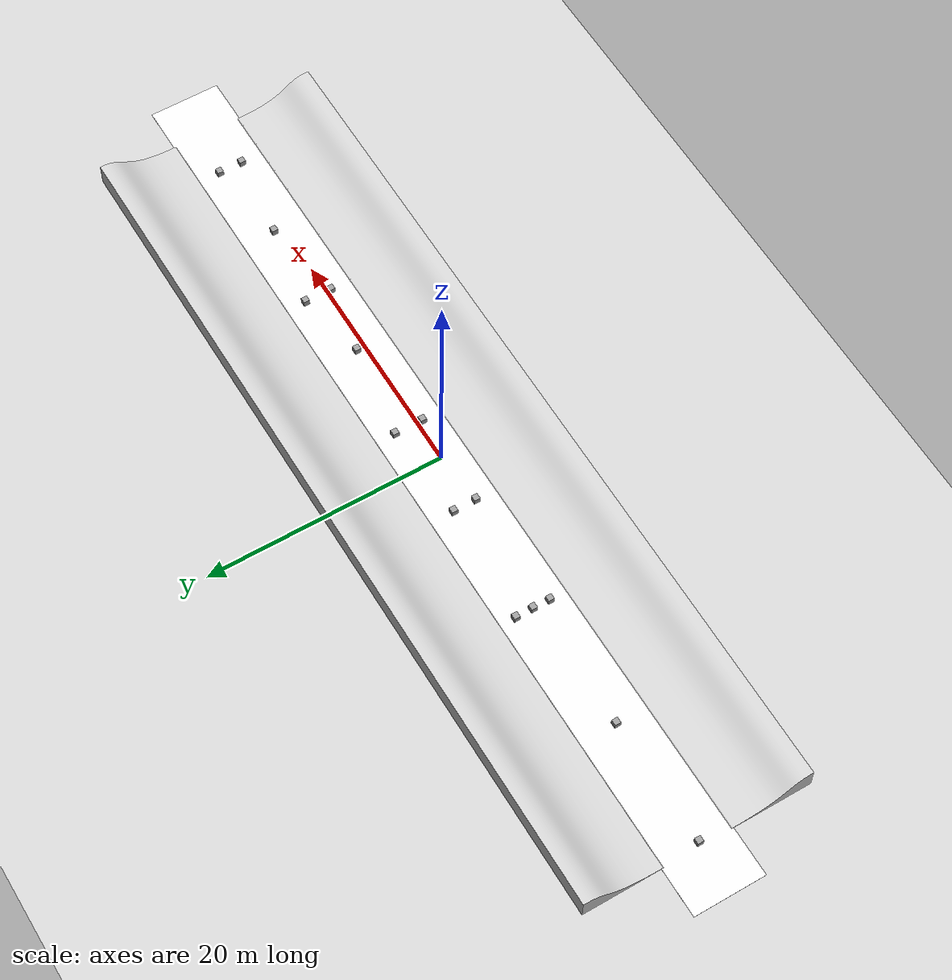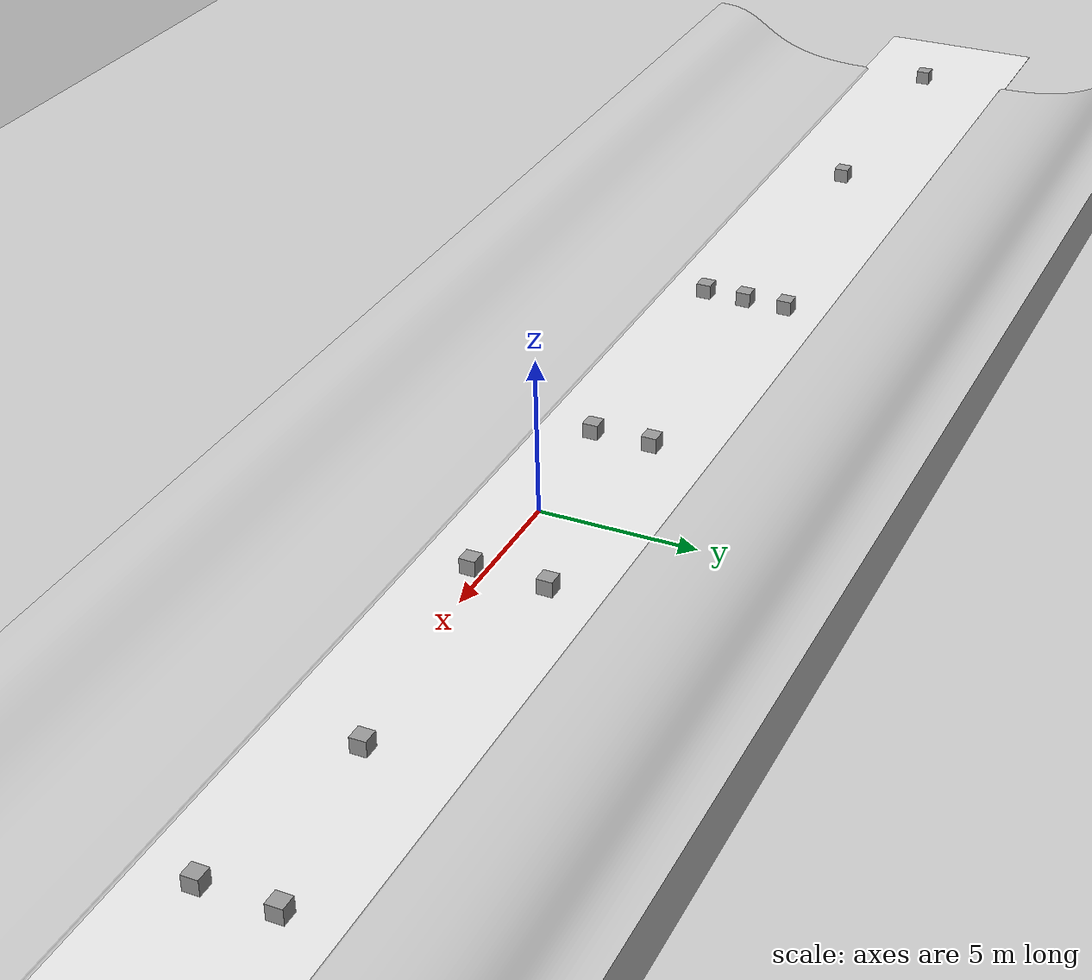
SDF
<sdf version="1.6">
 <world name="default">
  <light name="sun" type="directional">
   <pose>0 0 10 0 -0 0</pose>
   <diffuse>0.8 0.8 0.8 1</diffuse>
   <specular>0.2 0.2 0.2 1</specular>
   <attenuation>
    <range>1000</range>
    <constant>0.9</constant>
    <linear>0.01</linear>
    <quadratic>0.001</quadratic>
   </attenuation>
   <direction>-0.5 0.1 -0.9</direction>
  </light>
  <model name="ground_plane">
   <static>1</static>
   <link name="link">
    <collision name="collision">
     <geometry><plane><normal>0 0 1</normal><size>100 100</size></plane></geometry>
     <surface>
      <contact><collide_bitmask>65535</collide_bitmask></contact>
      <friction><ode><mu>100</mu><mu2>50</mu2></ode></friction>
     </surface>
    </collision>
    <visual name="visual">
     <cast_shadows>0</cast_shadows>
     <geometry><plane><normal>0 0 1</normal><size>100 100</size></plane></geometry>
     <material>
      <script><uri>file://media/materials/scripts/gazebo.material</uri><name>Gazebo/Grey</name></script>
     </material>
    </visual>
   </link>
  </model>
  <gravity>0 0 -9.8</gravity>
  <magnetic_field>6e-06 2.3e-05 -4.2e-05</magnetic_field>
  <atmosphere type="adiabatic"/>
  <physics name="default_physics" default="0" type="ode">
   <max_step_size>0.001</max_step_size>
   <real_time_factor>1</real_time_factor>
   <real_time_update_rate>1000</real_time_update_rate>
  </physics>
  <scene><ambient>0.4 0.4 0.4 1</ambient><background>0.7 0.7 0.7 1</background><shadows>1</shadows></scene>
  <spherical_coordinates>
   <surface_model>EARTH_WGS84</surface_model>
   <latitude_deg>0</latitude_deg>
   <longitude_deg>0</longitude_deg>
   <elevation>0</elevation>
   <heading_deg>0</heading_deg>
  </spherical_coordinates>
  <model name="road_dashed_two_white">
   <static>1</static>
   <link name="link">
    <collision name="collision"><geometry><box><size>80 6 0.02</size></box></geometry></collision>
    <visual name="visual">
     <cast_shadows>0</cast_shadows>
     <geometry><box><size>80 6 0.02</size></box></geometry>
     <material>
      <script>
       <uri>model://road_dashed_two_white/materials/scripts</uri>
       <uri>model://road_dashed_two_white/materials/textures</uri>
       <name>DashedTwoWhite</name>
      </script>
     </material>
    </visual>
   </link>
   <pose>-0.03004 0.750855 0 0 -0 0</pose>
  </model>
  <model name="side_slope">
   <static>1</static>
   <link name="slope_1">
    <collision name="collision">
     <geometry><mesh><uri>model://side_slope/meshes/side_slope.dae</uri><scale>36 1.5 1.5</scale></mesh></geometry>
    </collision>
    <visual name="visual">
     <geometry><mesh><uri>model://side_slope/meshes/side_slope.dae</uri><scale>36 1.5 1.5</scale></mesh></geometry>
     <material>
      <ambient>0.7 0.7 0.7 1</ambient>
      <diffuse>0.8 0.8 0.8 1</diffuse>
      <specular>0.1 0.1 0.1 1</specular>
      <emissive>0 0 0 0</emissive>
     </material>
    </visual>
   </link>
   <link name="slope_2">
    <pose>0 12.3 0 0 -0 -3.14159</pose>
    <collision name="collision">
     <geometry><mesh><uri>model://side_slope/meshes/side_slope.dae</uri><scale>36 1.5 1.5</scale></mesh></geometry>
    </collision>
    <visual name="visual">
     <geometry><mesh><uri>model://side_slope/meshes/side_slope.dae</uri><scale>36 1.5 1.5</scale></mesh></geometry>
     <material>
      <ambient>0.7 0.7 0.7 1</ambient>
      <diffuse>0.8 0.8 0.8 1</diffuse>
      <specular>0.1 0.1 0.1 1</specular>
      <emissive>0 0 0 0</emissive>
     </material>
    </visual>
   </link>
   <pose>0.009305 -5.40299 0 0 -0 0</pose>
  </model>
  <model name="unit_box">
   <pose>31.8605 -0.218029 0.26 0 -0 0</pose>
   <link name="link">
    <inertial>
     <mass>1</mass>
     <inertia>
      <ixx>0.166667</ixx>
      <ixy>0</ixy>
      <ixz>0</ixz>
      <iyy>0.166667</iyy>
      <iyz>0</iyz>
      <izz>0.166667</izz>
     </inertia>
    </inertial>
    <collision name="collision"><geometry><box><size>0.5 0.5 0.5</size></box></geometry></collision>
    <visual name="visual">
     <geometry><box><size>0.5 0.5 0.5</size></box></geometry>
     <material>
      <script><name>Gazebo/Grey</name><uri>file://media/materials/scripts/gazebo.material</uri></script>
     </material>
    </visual>
   </link>
  </model>
  <model name="unit_box_clone">
   <pose>17.4196 -0.316624 0.26 0 -0 0</pose>
   <link name="link">
    <inertial>
     <mass>1</mass>
     <inertia>
      <ixx>0.166667</ixx>
      <ixy>0</ixy>
      <ixz>0</ixz>
      <iyy>0.166667</iyy>
      <iyz>0</iyz>
      <izz>0.166667</izz>
     </inertia>
    </inertial>
    <collision name="collision"><geometry><box><size>0.5 0.5 0.5</size></box></geometry></collision>
    <visual name="visual">
     <geometry><box><size>0.5 0.5 0.5</size></box></geometry>
     <material>
      <script><name>Gazebo/Grey</name><uri>file://media/materials/scripts/gazebo.material</uri></script>
     </material>
    </visual>
   </link>
  </model>
  <model name="unit_box_clone_0">
   <pose>31.861 1.79872 0.26 0 -0 0</pose>
   <link name="link">
    <inertial>
     <mass>1</mass>
     <inertia>
      <ixx>0.166667</ixx>
      <ixy>0</ixy>
      <ixz>0</ixz>
      <iyy>0.166667</iyy>
      <iyz>0</iyz>
      <izz>0.166667</izz>
     </inertia>
    </inertial>
    <collision name="collision"><geometry><box><size>0.5 0.5 0.5</size></box></geometry></collision>
    <visual name="visual">
     <geometry><box><size>0.5 0.5 0.5</size></box></geometry>
     <material>
      <script><name>Gazebo/Grey</name><uri>file://media/materials/scripts/gazebo.material</uri></script>
     </material>
    </visual>
   </link>
  </model>
  <model name="unit_box_clone_1">
   <pose>24.6094 0.800043 0.26 0 -0 0</pose>
   <link name="link">
    <inertial>
     <mass>1</mass>
     <inertia>
      <ixx>0.166667</ixx>
      <ixy>0</ixy>
      <ixz>0</ixz>
      <iyy>0.166667</iyy>
      <iyz>0</iyz>
      <izz>0.166667</izz>
     </inertia>
    </inertial>
    <collision name="collision"><geometry><box><size>0.5 0.5 0.5</size></box></geometry></collision>
    <visual name="visual">
     <geometry><box><size>0.5 0.5 0.5</size></box></geometry>
     <material>
      <script><name>Gazebo/Grey</name><uri>file://media/materials/scripts/gazebo.material</uri></script>
     </material>
    </visual>
   </link>
  </model>
  <model name="unit_box_clone_2">
   <pose>11.543 0.726188 0.26 0 -0 0</pose>
   <link name="link">
    <inertial>
     <mass>1</mass>
     <inertia>
      <ixx>0.166667</ixx>
      <ixy>0</ixy>
      <ixz>0</ixz>
      <iyy>0.166667</iyy>
      <iyz>0</iyz>
      <izz>0.166667</izz>
     </inertia>
    </inertial>
    <collision name="collision"><geometry><box><size>0.5 0.5 0.5</size></box></geometry></collision>
    <visual name="visual">
     <geometry><box><size>0.5 0.5 0.5</size></box></geometry>
     <material>
      <script><name>Gazebo/Grey</name><uri>file://media/materials/scripts/gazebo.material</uri></script>
     </material>
    </visual>
   </link>
  </model>
  <model name="unit_box_clone_3">
   <pose>17.4465 1.94786 0.26 0 -0 0</pose>
   <link name="link">
    <inertial>
     <mass>1</mass>
     <inertia>
      <ixx>0.166667</ixx>
      <ixy>0</ixy>
      <ixz>0</ixz>
      <iyy>0.166667</iyy>
      <iyz>0</iyz>
      <izz>0.166667</izz>
     </inertia>
    </inertial>
    <collision name="collision"><geometry><box><size>0.5 0.5 0.5</size></box></geometry></collision>
    <visual name="visual">
     <geometry><box><size>0.5 0.5 0.5</size></box></geometry>
     <material>
      <script><name>Gazebo/Grey</name><uri>file://media/materials/scripts/gazebo.material</uri></script>
     </material>
    </visual>
   </link>
  </model>
  <model name="unit_box_clone_4">
   <pose>3.52228 1.99 0.26 0 -0 0</pose>
   <link name="link">
    <inertial>
     <mass>1</mass>
     <inertia>
      <ixx>0.166667</ixx>
      <ixy>0</ixy>
      <ixz>0</ixz>
      <iyy>0.166667</iyy>
      <iyz>0</iyz>
      <izz>0.166667</izz>
     </inertia>
    </inertial>
    <collision name="collision"><geometry><box><size>0.5 0.5 0.5</size></box></geometry></collision>
    <visual name="visual">
     <geometry><box><size>0.5 0.5 0.5</size></box></geometry>
     <material>
      <script><name>Gazebo/Grey</name><uri>file://media/materials/scripts/gazebo.material</uri></script>
     </material>
    </visual>
   </link>
  </model>
  <model name="unit_box_clone_5">
   <pose>3.49939 -0.403819 0.26 0 -0 0</pose>
   <link name="link">
    <inertial>
     <mass>1</mass>
     <inertia>
      <ixx>0.166667</ixx>
      <ixy>0</ixy>
      <ixz>0</ixz>
      <iyy>0.166667</iyy>
      <iyz>0</iyz>
      <izz>0.166667</izz>
     </inertia>
    </inertial>
    <collision name="collision"><geometry><box><size>0.5 0.5 0.5</size></box></geometry></collision>
    <visual name="visual">
     <geometry><box><size>0.5 0.5 0.5</size></box></geometry>
     <material>
      <script><name>Gazebo/Grey</name><uri>file://media/materials/scripts/gazebo.material</uri></script>
     </material>
    </visual>
   </link>
  </model>
  <model name="unit_box_clone_6">
   <pose>-4.48905 -0.320006 0.26 0 -0 0</pose>
   <link name="link">
    <inertial>
     <mass>1</mass>
     <inertia>
      <ixx>0.166667</ixx>
      <ixy>0</ixy>
      <ixz>0</ixz>
      <iyy>0.166667</iyy>
      <iyz>0</iyz>
      <izz>0.166667</izz>
     </inertia>
    </inertial>
    <collision name="collision"><geometry><box><size>0.5 0.5 0.5</size></box></geometry></collision>
    <visual name="visual">
     <geometry><box><size>0.5 0.5 0.5</size></box></geometry>
     <material>
      <script><name>Gazebo/Grey</name><uri>file://media/materials/scripts/gazebo.material</uri></script>
     </material>
    </visual>
   </link>
  </model>
  <model name="unit_box_clone_7">
   <pose>-4.51313 1.62305 0.26 0 -0 0</pose>
   <link name="link">
    <inertial>
     <mass>1</mass>
     <inertia>
      <ixx>0.166667</ixx>
      <ixy>0</ixy>
      <ixz>0</ixz>
      <iyy>0.166667</iyy>
      <iyz>0</iyz>
      <izz>0.166667</izz>
     </inertia>
    </inertial>
    <collision name="collision"><geometry><box><size>0.5 0.5 0.5</size></box></geometry></collision>
    <visual name="visual">
     <geometry><box><size>0.5 0.5 0.5</size></box></geometry>
     <material>
      <script><name>Gazebo/Grey</name><uri>file://media/materials/scripts/gazebo.material</uri></script>
     </material>
    </visual>
   </link>
  </model>
  <model name="unit_box_clone_8">
   <pose>-14.4167 -0.635273 0.26 0 -0 0</pose>
   <link name="link">
    <inertial>
     <mass>1</mass>
     <inertia>
      <ixx>0.166667</ixx>
      <ixy>0</ixy>
      <ixz>0</ixz>
      <iyy>0.166667</iyy>
      <iyz>0</iyz>
      <izz>0.166667</izz>
     </inertia>
    </inertial>
    <collision name="collision"><geometry><box><size>0.5 0.5 0.5</size></box></geometry></collision>
    <visual name="visual">
     <geometry><box><size>0.5 0.5 0.5</size></box></geometry>
     <material>
      <script><name>Gazebo/Grey</name><uri>file://media/materials/scripts/gazebo.material</uri></script>
     </material>
    </visual>
   </link>
  </model>
  <model name="unit_box_clone_9">
   <pose>-14.3912 0.804892 0.26 0 -0 0</pose>
   <link name="link">
    <inertial>
     <mass>1</mass>
     <inertia>
      <ixx>0.166667</ixx>
      <ixy>0</ixy>
      <ixz>0</ixz>
      <iyy>0.166667</iyy>
      <iyz>0</iyz>
      <izz>0.166667</izz>
     </inertia>
    </inertial>
    <collision name="collision"><geometry><box><size>0.5 0.5 0.5</size></box></geometry></collision>
    <visual name="visual">
     <geometry><box><size>0.5 0.5 0.5</size></box></geometry>
     <material>
      <script><name>Gazebo/Grey</name><uri>file://media/materials/scripts/gazebo.material</uri></script>
     </material>
    </visual>
   </link>
  </model>
  <model name="unit_box_clone_10">
   <pose>-14.4006 2.27714 0.26 0 -0 0</pose>
   <link name="link">
    <inertial>
     <mass>1</mass>
     <inertia>
      <ixx>0.166667</ixx>
      <ixy>0</ixy>
      <ixz>0</ixz>
      <iyy>0.166667</iyy>
      <iyz>0</iyz>
      <izz>0.166667</izz>
     </inertia>
    </inertial>
    <collision name="collision"><geometry><box><size>0.5 0.5 0.5</size></box></geometry></collision>
    <visual name="visual">
     <geometry><box><size>0.5 0.5 0.5</size></box></geometry>
     <material>
      <script><name>Gazebo/Grey</name><uri>file://media/materials/scripts/gazebo.material</uri></script>
     </material>
    </visual>
   </link>
  </model>
  <model name="unit_box_clone_11">
   <pose>-25.1877 0.546952 0.26 0 -0 0</pose>
   <link name="link">
    <inertial>
     <mass>1</mass>
     <inertia>
      <ixx>0.166667</ixx>
      <ixy>0</ixy>
      <ixz>0</ixz>
      <iyy>0.166667</iyy>
      <iyz>0</iyz>
      <izz>0.166667</izz>
     </inertia>
    </inertial>
    <collision name="collision"><geometry><box><size>0.5 0.5 0.5</size></box></geometry></collision>
    <visual name="visual">
     <geometry><box><size>0.5 0.5 0.5</size></box></geometry>
     <material>
      <script><name>Gazebo/Grey</name><uri>file://media/materials/scripts/gazebo.material</uri></script>
     </material>
    </visual>
   </link>
  </model>
  <model name="unit_box_clone_12">
   <pose>-35.6498 0.455596 0.260001 2e-06 -0 0</pose>
   <link name="link">
    <inertial>
     <mass>1</mass>
     <inertia>
      <ixx>0.166667</ixx>
      <ixy>0</ixy>
      <ixz>0</ixz>
      <iyy>0.166667</iyy>
      <iyz>0</iyz>
      <izz>0.166667</izz>
     </inertia>
    </inertial>
    <collision name="collision"><geometry><box><size>0.5 0.5 0.5</size></box></geometry></collision>
    <visual name="visual">
     <geometry><box><size>0.5 0.5 0.5</size></box></geometry>
     <material>
      <script><name>Gazebo/Grey</name><uri>file://media/materials/scripts/gazebo.material</uri></script>
     </material>
    </visual>
   </link>
  </model>
 </world>
</sdf>
